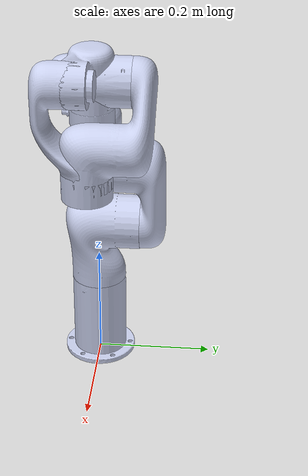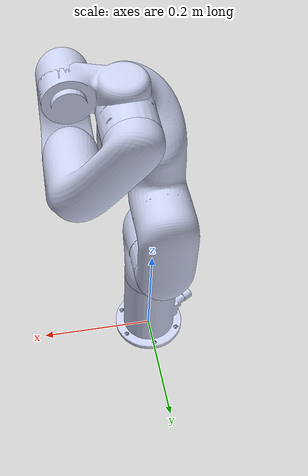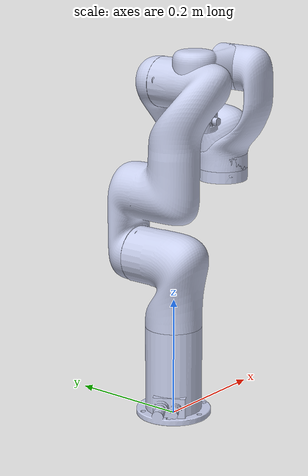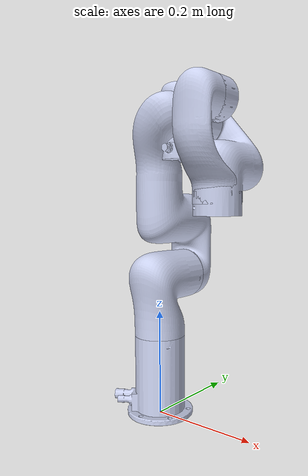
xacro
<?xml version="1.0" encoding="utf-8"?>
<robot name="pegasus" xmlns:xacro="http://www.ros.org/wiki/xacro">

  <gazebo>
    <plugin name="gazebo_ros_control" filename="libgazebo_ros_control.so">
      <robotNamespace>/</robotNamespace>
      <robotSimType>gazebo_ros_control/DefaultRobotHWSim</robotSimType>
    </plugin>
    <plugin name="differential_drive_controller" filename="libdiffdrive_plugin.so">
    <robotNamespace>/</robotNamespace>
    </plugin>
  </gazebo>

  <!-- Used for fixing robot to Gazebo 'base_link' -->
  <link name="world"/>

  <link
    name="airbearing">
    <inertial>
      <origin
        xyz="-0.0013655 -0.000682 0.072171"
        rpy="0 0 0" />
      <mass
        value="1.1501" />
      <inertia
        ixx="0.0030717"
        ixy="-3.9993E-05"
        ixz="-7.0639E-05"
        iyy="0.0031352"
        iyz="-3.5273E-05"
        izz="0.001496" />
    </inertial>

  </link>

  <joint name="airbearing_joint" type="planar">
    <parent link="world"/>
    <child link="airbearing"/>
  </joint>

  <joint name="base_link_joint" type="fixed">
    <parent link="airbearing"/>
    <child link="base_link"/>
  </joint>

  <link
    name="base_link">
    <inertial>
      <origin
        xyz="-0.0013655 -0.000682 0.072171"
        rpy="0 0 0" />
      <mass
        value="1.1501" />
      <inertia
        ixx="0.0030717"
        ixy="-3.9993E-05"
        ixz="-7.0639E-05"
        iyy="0.0031352"
        iyz="-3.5273E-05"
        izz="0.001496" />
    </inertial>
    <visual>
      <origin
        xyz="0 0 0"
        rpy="0 0 0" />
      <geometry>
        <mesh
          filename="package://pegasus_description/meshes/base_link.STL" />
      </geometry>
      <material
        name="">
        <color
          rgba="0.79216 0.81961 0.93333 1" />
      </material>
    </visual>
    <collision>
      <origin
        xyz="0 0 0"
        rpy="0 0 0" />
      <geometry>
        <mesh
          filename="package://pegasus_description/meshes/base_link.STL" />
      </geometry>
    </collision>
  </link>
  <link
    name="link1">
    <inertial>
      <origin
        xyz="-0.00020743 -0.0063513 0.094409"
        rpy="0 0 0" />
      <mass
        value="1.3256" />
      <inertia
        ixx="0.0039708"
        ixy="-2.9075E-06"
        ixz="7.7436E-06"
        iyy="0.0033752"
        iyz="0.00039026"
        izz="0.002117" />
    </inertial>
    <visual>
      <origin
        xyz="0 0 0"
        rpy="0 0 0" />
      <geometry>
        <mesh
          filename="package://pegasus_description/meshes/link1.STL" />
      </geometry>
      <material
        name="">
        <color
          rgba="0.79216 0.81961 0.93333 1" />
      </material>
    </visual>
    <collision>
      <origin
        xyz="0 0 0"
        rpy="0 0 0" />
      <geometry>
        <mesh
          filename="package://pegasus_description/meshes/link1.STL" />
      </geometry>
    </collision>
  </link>
  <joint
    name="joint1"
    type="revolute">
    <origin
      xyz="0 0 0.14375"
      rpy="0 0 3.1416" />
    <parent
      link="base_link" />
    <child
      link="link1" />
    <axis
      xyz="0 0 -1" />
    <limit
      lower="-3.14"
      upper="3.14"
      effort="30"
      velocity="3.14" />
  </joint>
  <link
    name="link2">
    <inertial>
      <origin
        xyz="0.026642 0.013139 -0.16433"
        rpy="0 0 0" />
      <mass
        value="2.6935" />
      <inertia
        ixx="0.015605"
        ixy="-0.00010043"
        ixz="-0.00079834"
        iyy="0.015005"
        iyz="0.0027754"
        izz="0.0042631" />
    </inertial>
    <visual>
      <origin
        xyz="0 0 0"
        rpy="0 0 0" />
      <geometry>
        <mesh
          filename="package://pegasus_description/meshes/link2.STL" />
      </geometry>
      <material
        name="">
        <color
          rgba="0.79216 0.81961 0.93333 1" />
      </material>
    </visual>
    <collision>
      <origin
        xyz="0 0 0"
        rpy="0 0 0" />
      <geometry>
        <mesh
          filename="package://pegasus_description/meshes/link2.STL" />
      </geometry>
    </collision>
  </link>
  <joint
    name="joint2"
    type="revolute">
    <origin
      xyz="-0.00034902 0 0.12305"
      rpy="3.1416 0 -1.5708" />
    <parent
      link="link1" />
    <child
      link="link2" />
    <axis
      xyz="-1 0 0" />
    <limit
      lower="-3.14"
      upper="3.14"
      effort="30"
      velocity="3.14" />
  </joint>
  <link
    name="link3">
    <inertial>
      <origin
        xyz="0.062201 -0.079002 -0.038074"
        rpy="0 0 0" />
      <mass
        value="1.3025" />
      <inertia
        ixx="0.0052534"
        ixy="0.0013651"
        ixz="-0.00092052"
        iyy="0.0039375"
        iyz="0.0015961"
        izz="0.0045536" />
    </inertial>
    <visual>
      <origin
        xyz="0 0 0"
        rpy="0 0 0" />
      <geometry>
        <mesh
          filename="package://pegasus_description/meshes/link3.STL" />
      </geometry>
      <material
        name="">
        <color
          rgba="0.79216 0.81961 0.93333 1" />
      </material>
    </visual>
    <collision>
      <origin
        xyz="0 0 0"
        rpy="0 0 0" />
      <geometry>
        <mesh
          filename="package://pegasus_description/meshes/link3.STL" />
      </geometry>
    </collision>
  </link>
  <joint
    name="joint3"
    type="revolute">
    <origin
      xyz="0 0.053313 -0.2859"
      rpy="-1.5708 0 1.5708" />
    <parent
      link="link2" />
    <child
      link="link3" />
    <axis
      xyz="0 0 1" />
    <limit
      lower="-3.14"
      upper="3.14"
      effort="30"
      velocity="3.14" />
  </joint>
  <link
    name="link4">
    <inertial>
      <origin
        xyz="0.032181 -0.10763 -0.00025916"
        rpy="0 0 0" />
      <mass
        value="0.78956" />
      <inertia
        ixx="0.0040495"
        ixy="0.00099079"
        ixz="-3.3653E-06"
        iyy="0.0010518"
        iyz="2.2959E-06"
        izz="0.0044957" />
    </inertial>
    <visual>
      <origin
        xyz="0 0 0"
        rpy="0 0 0" />
      <geometry>
        <mesh
          filename="package://pegasus_description/meshes/link4.STL" />
      </geometry>
      <material
        name="">
        <color
          rgba="0.79216 0.81961 0.93333 1" />
      </material>
    </visual>
    <collision>
      <origin
        xyz="0 0 0"
        rpy="0 0 0" />
      <geometry>
        <mesh
          filename="package://pegasus_description/meshes/link4.STL" />
      </geometry>
    </collision>
  </link>
  <joint
    name="joint4"
    type="revolute">
    <origin
      xyz="0.077751 -0.15917 0.00050223"
      rpy="3.1416 -1.5708 0" />
    <parent
      link="link3" />
    <child
      link="link4" />
    <axis
      xyz="0 1 0" />
    <limit
      lower="-3.14"
      upper="3.14"
      effort="30"
      velocity="3.14" />
  </joint>
  <link
    name="link5">
    <inertial>
      <origin
        xyz="-0.046746 -0.008353 -0.0094064"
        rpy="0 0 0" />
      <mass
        value="0.72305" />
      <inertia
        ixx="0.00079303"
        ixy="0.00025446"
        ixz="-0.00019796"
        iyy="0.001647"
        iyz="5.9782E-05"
        izz="0.0014859" />
    </inertial>
    <visual>
      <origin
        xyz="0 0 0"
        rpy="0 0 0" />
      <geometry>
        <mesh
          filename="package://pegasus_description/meshes/link5.STL" />
      </geometry>
      <material
        name="">
        <color
          rgba="0.79216 0.81961 0.93333 1" />
      </material>
    </visual>
    <collision>
      <origin
        xyz="0 0 0"
        rpy="0 0 0" />
      <geometry>
        <mesh
          filename="package://pegasus_description/meshes/link5.STL" />
      </geometry>
    </collision>
  </link>
  <joint
    name="joint5"
    type="revolute">
    <origin
      xyz="0 -0.183 -0.00043612"
      rpy="1.5708 -1.5708 0" />
    <parent
      link="link4" />
    <child
      link="link5" />
    <axis
      xyz="0 1 0" />
    <limit
      lower="-3.14"
      upper="3.14"
      effort="30"
      velocity="3.14" />
  </joint>
  <link
    name="link6">
    <inertial>
      <origin
        xyz="-0.0003867 -3.9832E-11 0.020577"
        rpy="0 0 0" />
      <mass
        value="0.13574" />
      <inertia
        ixx="5.7727E-05"
        ixy="-1.5582E-13"
        ixz="-3.205E-07"
        iyy="6.0882E-05"
        iyz="-3.7164E-14"
        izz="9.2769E-05" />
    </inertial>
    <visual>
      <origin
        xyz="0 0 0"
        rpy="0 0 0" />
      <geometry>
        <mesh
          filename="package://pegasus_description/meshes/link6.STL" />
      </geometry>
      <material
        name="">
        <color
          rgba="0.79216 0.81961 0.93333 1" />
      </material>
    </visual>
    <collision>
      <origin
        xyz="0 0 0"
        rpy="0 0 0" />
      <geometry>
        <mesh
          filename="package://pegasus_description/meshes/link6.STL" />
      </geometry>
    </collision>
  </link>
  <joint
    name="joint6"
    type="revolute">
    <origin
      xyz="-0.075873 0.00040933 -0.058524"
      rpy="3.1416 0 1.5708" />
    <parent
      link="link5" />
    <child
      link="link6" />
    <axis
      xyz="0 0 -1" />
    <limit
      lower="-3.14"
      upper="3.14"
      effort="30"
      velocity="3.14" />
  </joint>

   <transmission name="trans1">
    <type>transmission_interface/SimpleTransmission</type>
    <joint name="joint1">
      <hardwareInterface>hardware_interface/PositionJointInterface</hardwareInterface>
    </joint>
    <actuator name="motor1">
      <hardwareInterface>hardware_interface/PositionJointInterface</hardwareInterface>
      <mechanicalReduction>1</mechanicalReduction>
    </actuator>
  </transmission>

<transmission name="trans2">
    <type>transmission_interface/SimpleTransmission</type>
    <joint name="joint2">
      <hardwareInterface>hardware_interface/PositionJointInterface</hardwareInterface>
    </joint>
    <actuator name="motor2">
      <hardwareInterface>hardware_interface/PositionJointInterface</hardwareInterface>
      <mechanicalReduction>1</mechanicalReduction>
    </actuator>
  </transmission>

<transmission name="trans3">
    <type>transmission_interface/SimpleTransmission</type>
    <joint name="joint3">
      <hardwareInterface>hardware_interface/PositionJointInterface</hardwareInterface>
    </joint>
    <actuator name="motor3">
      <hardwareInterface>hardware_interface/PositionJointInterface</hardwareInterface>
      <mechanicalReduction>1</mechanicalReduction>
    </actuator>
  </transmission>

 <transmission name="trans4">
    <type>transmission_interface/SimpleTransmission</type>
    <joint name="joint4">
      <hardwareInterface>hardware_interface/PositionJointInterface</hardwareInterface>
    </joint>
    <actuator name="motor4">
      <hardwareInterface>hardware_interface/PositionJointInterface</hardwareInterface>
      <mechanicalReduction>1</mechanicalReduction>
    </actuator>
  </transmission>

  <transmission name="trans5">
    <type>transmission_interface/SimpleTransmission</type>
    <joint name="joint5">
      <hardwareInterface>hardware_interface/PositionJointInterface</hardwareInterface>
    </joint>
    <actuator name="motor5">
      <hardwareInterface>hardware_interface/PositionJointInterface</hardwareInterface>
      <mechanicalReduction>1</mechanicalReduction>
    </actuator>
  </transmission>

   <transmission name="trans6">
    <type>transmission_interface/SimpleTransmission</type>
    <joint name="joint6">
      <hardwareInterface>hardware_interface/PositionJointInterface</hardwareInterface>
    </joint>
    <actuator name="motor6">
      <hardwareInterface>hardware_interface/PositionJointInterface</hardwareInterface>
      <mechanicalReduction>1</mechanicalReduction>
    </actuator>
  </transmission>

  <transmission name="airbearing_transmission">
    <type>transmission_interface/SimpleTransmission</type>
    <joint name="airbearing_joint">
      <hardwareInterface>hardware_interface/VelocityJointInterface</hardwareInterface>
    </joint>
    <actuator name="airbearing_actuator">
      <mechanicalReduction>7</mechanicalReduction>
      <hardwareInterface>VelocityJointInterface</hardwareInterface>
    </actuator>
  </transmission>

</robot>
